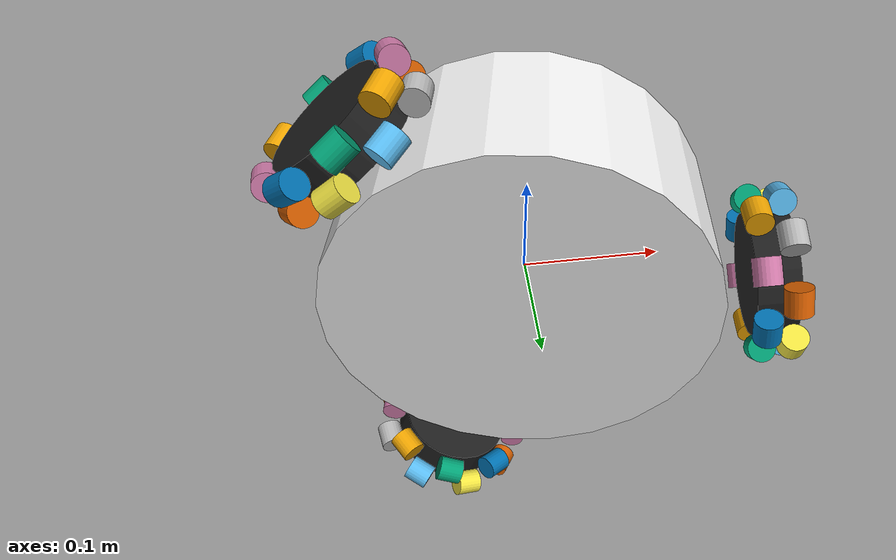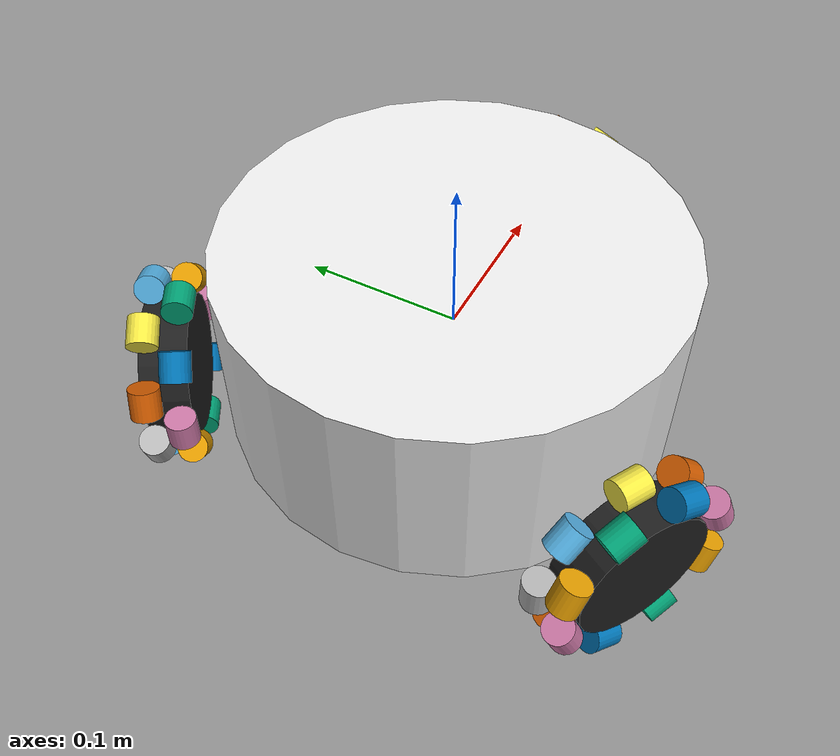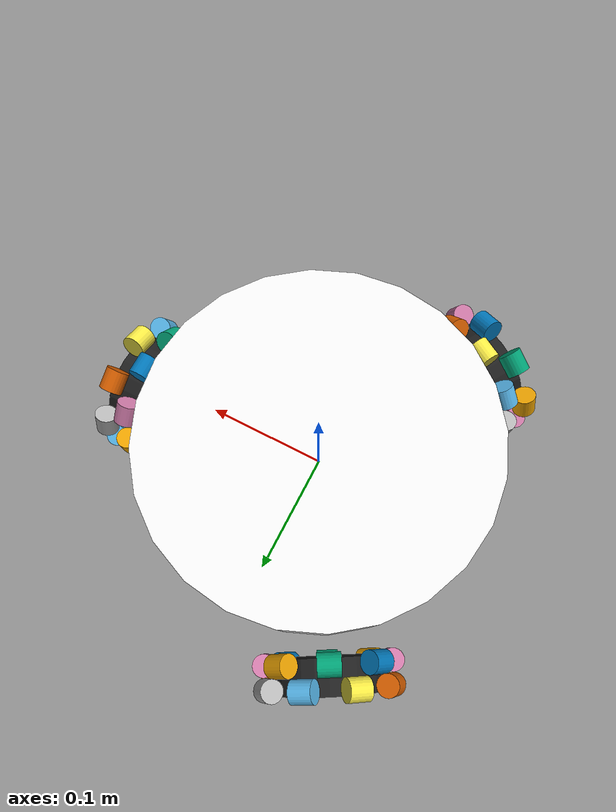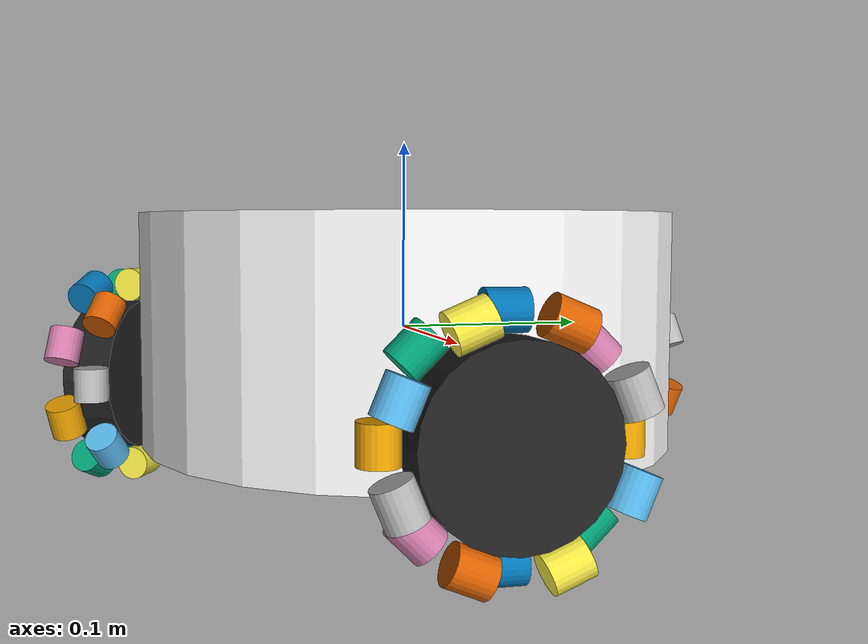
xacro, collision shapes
<?xml version="1.0"?>
<robot name="omni_mobile" xmlns:xacro="http://www.ros.org/wiki/xacro">
	<xacro:include filename="$(find lib_omni_mobile)/urdf/rim_wheel.urdf.xacro"/>
	<xacro:include filename="$(find lib_omni_mobile)/urdf/omni_mobile.gazebo.xacro" />
	<xacro:property name="PI" value="3.14" />
    <xacro:property name="base_link_length" value="0.124" />
    <xacro:property name="base_link_radius" value="0.14256" />
	<xacro:property name="wheel_length" value="0.029" />
	<xacro:property name="wheel_radius" value="0.0435" />
	<xacro:property name="roller_length" value="0.0186" />
	<xacro:property name="roller_radius" value="0.0095" />

    <link name="base_link">
		<visual>
			<geometry>
				<cylinder length="${base_link_length}" radius="${base_link_radius}"/>
			</geometry>
			<origin xyz="0 0 0" rpy="0 0 0"/>
			<material name="white"/>
		</visual>
		<collision>
			<geometry>
				<cylinder length="${base_link_length}" radius="${base_link_radius}"/>
			</geometry>
			<origin xyz="0 0 0" rpy="0 0 0"/>
			<material name="white"/>
		</collision>
		<inertial>
			<origin xyz="0 0 0" rpy="0 0 0"/>
			<mass value="0.10"/>
			<inertia ixx="0.00092" ixy="0.0" ixz="0.0" iyy="0.00178" iyz="0.0" izz="0.00092"/>
		</inertial>
	</link>

	<xacro:rim name="left_wheel" parent="base_link" xyz="${-0.5*(base_link_radius+wheel_length/2+0.017)} ${0.866*(base_link_radius+wheel_length/2+0.017)} ${-0.03235}" rpy="0 ${PI/2} ${-PI/3}"/>
	<xacro:rim name="right_wheel" parent="base_link" xyz="${-0.5*(base_link_radius+wheel_length/2+0.017)} ${-0.866*(base_link_radius+wheel_length/2+0.017)} ${-0.03235}" rpy="0 ${PI/2} ${PI/3}"/>
	<xacro:rim name="front_wheel" parent="base_link" xyz="${base_link_radius+wheel_length/2+0.017} 0 ${-0.03235}" rpy="0 ${PI/2} ${PI}"/>

	<joint name="scan_joint" type="fixed">
		<parent link="base_link"/>
		<child link="base_scan"/>
		<origin xyz="${-(base_link_radius-wheel_length/2)} 0 ${base_link_length-0.03235}" rpy="0 0 ${PI}"/>
  	</joint>

	<link name="base_scan">
		<visual>
			<origin xyz="0 0 0"/>
			<geometry>
				<mesh filename="package://lib_omni_mobile/meshes/lds.stl" scale="0.001 0.001 0.001"/>
			</geometry>
			<origin xyz="0 0 0" rpy="0 0 0"/>
			<material name="black"/>
		</visual>
	</link>

	<joint name="imu_joint" type="fixed">
    	<parent link="base_link"/>
    	<child link="imu_link"/>
    	<origin xyz="0.0 0.0 0.0" rpy="0 0 0"/>
  	</joint>

  	<link name="imu_link"/>

</robot>

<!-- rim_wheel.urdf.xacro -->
<robot xmlns:xacro="http://www.ros.org/wiki/xacro">
<xacro:include filename="$(find lib_omni_mobile)/urdf/roller_wheel.urdf.xacro"/>
<xacro:macro name="rim" params="name parent xyz rpy">
    <link name="${name}">
        <inertial>
            <mass value="0.10"/>
            <inertia ixx="7.6e-5" ixy="0.0" ixz="0.0" iyy="7.6e-5" iyz="0.0" izz="0.000125"/>
        </inertial>
        <visual>
            <geometry>
                <cylinder radius="0.0435" length="0.029"/>
            </geometry>
            <material name="black"/>
        </visual>
        <collision>
            <geometry>
                <cylinder radius="0.0435" length="0.029"/>
            </geometry>
            <material name="black"/>
        </collision>
    </link>
    <joint name="joint_${name}" type="continuous">
        <parent link="${parent}"/>
        <child link="${name}"/>
        <axis xyz = "0 0 1"/>
        <origin xyz = "${xyz}" rpy = "${rpy}" />
        <limit effort="1000" velocity="3140"/>
    </joint>

    <xacro:roller name="8" parent="${name}"  xyz="0.053 0 0.0095" rpy="1.57 0 0"/>
	<xacro:roller name="7" parent="${name}"  xyz="0.048966 0.020282 -0.0095" rpy="1.57 0 0.3927"/>
	<xacro:roller name="6" parent="${name}"  xyz="0.037477 0.037477 0.0095" rpy="1.57 0 0.7854"/>
	<xacro:roller name="5" parent="${name}"  xyz="0.020282 0.048966 -0.0095" rpy="1.57 0 1.1781"/>
	<xacro:roller name="4" parent="${name}"  xyz="0 0.053 0.0095" rpy="1.57 0 1.5708"/>
	<xacro:roller name="3" parent="${name}"  xyz="-0.020282 0.048966 -0.0095" rpy="1.57 0 1.9635"/>
	<xacro:roller name="2" parent="${name}"  xyz="-0.037477 0.037477 0.0095" rpy="1.57 0 2.3562"/>
	<xacro:roller name="1" parent="${name}"  xyz="-0.048966 0.020282 -0.0095" rpy="1.57 0 2.7489"/>
	<xacro:roller name="16" parent="${name}" xyz="-0.053 0 0.0095" rpy="1.57 0 3.1416"/>
	<xacro:roller name="15" parent="${name}" xyz="-0.048966 -0.020282 -0.0095" rpy="1.57 0 -2.7489"/>
	<xacro:roller name="14" parent="${name}" xyz="-0.037477 -0.037477 0.0095" rpy="1.57 0 -2.3562"/>
	<xacro:roller name="13" parent="${name}" xyz="-0.020282 -0.048966 -0.0095" rpy="1.57 0 -1.9635"/>
	<xacro:roller name="12" parent="${name}" xyz="0 -0.053 0.0095" rpy="1.57 0 -1.5708"/>
	<xacro:roller name="11" parent="${name}" xyz="0.020282 -0.048966 -0.0095" rpy="1.57 0 -1.1781"/>
	<xacro:roller name="10" parent="${name}" xyz="0.037477 -0.037477 0.0095" rpy="1.57 0 -0.7854"/>
	<xacro:roller name="9" parent="${name}" xyz="0.048966 -0.020282 -0.0095" rpy="1.57 0 -0.3927"/>

    <transmission name="${name}_tran">
        <type>transmission_interface/SimpleTransmission</type>
        <joint name="joint_${name}">
            <hardwareInterface>hardware_interface/EffortJointInterface</hardwareInterface>
        </joint>
        <actuator name="${name}_motor">
            <hardwareInterface>hardware_interface/EffortJointInterface</hardwareInterface>
            <mechanicalReduction>1</mechanicalReduction>
        </actuator>
    </transmission>

</xacro:macro>
</robot>

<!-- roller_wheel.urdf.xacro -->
<robot xmlns:xacro="http://www.ros.org/wiki/xacro">
<xacro:macro name="roller" params="name parent xyz rpy">
    <link name="roller_${name}_${parent}">
        <inertial>
            <inertia ixx="1e-6" ixy="0.0" ixz="0.0" iyy="1e-6" iyz="0.0" izz="1e-7"/>
            <mass value="0.010"/>
        </inertial>
        <visual>
            <geometry>
                <cylinder radius="0.0095" length="0.0186"/>
            </geometry>
        </visual>
        <collision>
            <geometry>
                <cylinder radius="0.0095" length="0.0186"/>
            </geometry>
        </collision>
    </link>
    <joint name="roller_${name}_${parent}" type="continuous">
        <parent link="${parent}"/>
        <child link="roller_${name}_${parent}"/>
        <axis xyz="0 0 1"/>
        <origin xyz="${xyz}" rpy="${rpy}"/>
        <limit effort="1000" velocity="31.4"/>
    </joint>
</xacro:macro>
</robot>
